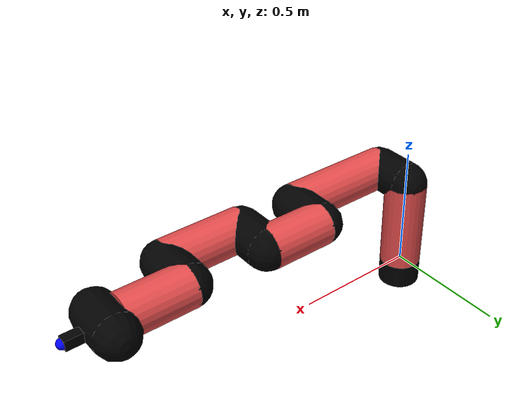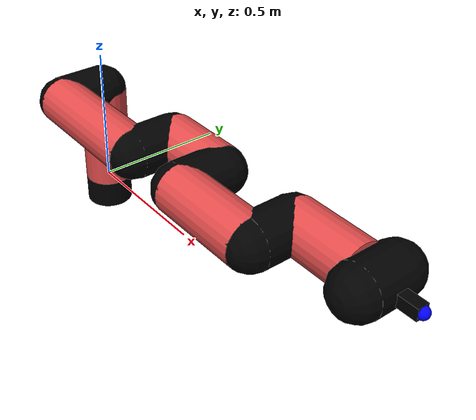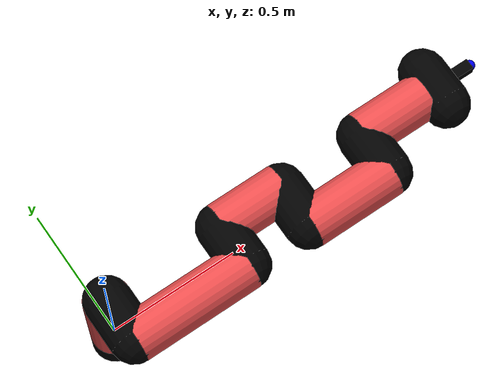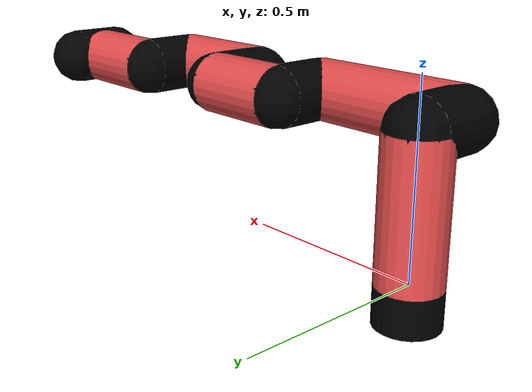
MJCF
<mujoco model="manipulator">
		<compiler angle="degree" coordinate="local" inertiafromgeom="auto" meshdir="meshes/"/>
		<option gravity="0 0 0" integrator="RK4" iterations="30" timestep="0.01"/>

		<default>
		<joint armature="1" limited="true" stiffness="10" damping="15" frictionloss="5.0"/>
		<geom conaffinity="1" condim="3" contype="1" friction=".5 .1 .1" margin="0.002"/>
		<motor ctrllimited="true"/>
		<position ctrllimited="true"/>
		</default>

		<asset>
		<texture builtin="gradient" height="100" rgb1="1.0 1.0 1.0" rgb2="1.0 1.0 1.0" type="skybox" width="100"/>
		<texture builtin="flat" height="32" name="arm_tex" rgb1="0.9 0.3 0.3" type="2d" width="32"/>
		<texture builtin="flat" height="32" name="gripper_tex" rgb1="0.0 0.0 0.0" type="cube" width="32"/>

		<material name="arm_mat" shininess="0.1" specular="0.1" texture="arm_tex"/>
		<material name="gripper_mat" shininess="1" specular="1" texture="gripper_tex"/>
		</asset>

		<worldbody>
		<light cutoff="45" diffuse=".8 .8 .8" dir="0 0.16 -1" directional="false" name="light" pos="0 -2.0 8.0" specular="0.3 0.3 0.3"/>

		<body name="base_link" pos="0 0 -0.1">
		<geom fromto="0 0 0 0 0 0.1" material="arm_mat" name="base_link" rgba="0.0 0.0 0.0 1" size="0.085" type="cylinder"/>
		</body>

		<body name="l1" pos="0 0 0">
<geom fromto="0 0 0 0 0 0.37" material="arm_mat" name="l1" rgba="0.9 0.3 0.3 1" size="0.085" type="cylinder"/>
<geom fromto="0 0 0.37 0 -0.16 0.37" material="arm_mat" name="l1_ex" rgba="0.0 0.0 0.0 1" size="0.085" type="capsule"/>
<joint axis="0 0 1" name="j1" pos="0 0 0" range="-90 90" damping="23.14" frictionloss="7.88"/>

<body name="l2" pos="0 -0.16 0.37">
<geom fromto="0 0 0 0.45 0 0" material="arm_mat" name="l2" rgba="0.9 0.3 0.3 1" size="0.085" type="cylinder"/>
<geom fromto="0.45 0 0 0.45 0.16 0" material="arm_mat" name="l2_ex" rgba="0.0 0.0 0.0 1" size="0.085" type="capsule"/>
<joint axis="0.0 1.0 0.0" name="j2" pos="0 0 0" range="-90 60" damping="26.2" frictionloss="11.85"/>

<body name="l3" pos="0.45 0.16 0">
<geom fromto="0 0 0 0.25 0 0" material="arm_mat" name="l3" rgba="0.9 0.3 0.3 1" size="0.085" type="cylinder"/>
<geom fromto="0.25 0 0 0.25 -0.16 0" material="arm_mat" name="l3_ex" rgba="0.0 0.0 0.0 1" size="0.085" type="capsule"/>
<joint axis="0.0 1.0 0.0" name="j3" pos="0 0 0" range="-30 60" damping="36.09" frictionloss="10.62"/>

<body name="l4" pos="0.25 -0.16 0">
<geom fromto="0 0 0 0.33 0 0" material="arm_mat" name="l4" rgba="0.9 0.3 0.3 1" size="0.085" type="cylinder"/>
<geom fromto="0.33 0 0 0.33 0.16 0" material="arm_mat" name="l4_ex" rgba="0.0 0.0 0.0 1" size="0.085" type="capsule"/>
<joint axis="0.0 1.0 0.0" name="j4" pos="0 0 0" range="-30 60" damping="22.89" frictionloss="12.39"/>

<body name="l5" pos="0.33 0.16 0">
<geom fromto="0 0 0 0.26 0 0" material="arm_mat" name="l5" rgba="0.9 0.3 0.3 1" size="0.085" type="cylinder"/>
<joint axis="0.0 1.0 0.0" name="j5" pos="0 0 0" range="-30 60" damping="29.63" frictionloss="11.69"/>

<body name="gripper" pos="0.26 0 0">
<geom fromto="0.05 -0.07 0 0.05 0.07 0" material="gripper_mat" name="gripper" rgba="0.0 0.0 0.0 1" size="0.085" type="capsule"/><joint axis="1 0 0" name="j6" pos="0 0 0" range="-90 90" damping="15" frictionloss="5.0"/><body name="finger" pos="0.1 0 0">
<geom fromto="0 0.0 0 0.1 0.0 0" material="gripper_mat" name="finger" rgba="0.0 0.0 0.0 1" size="0.020 0.06 0.06" type="box"/>
</body>
<site name="current" pos="0.2 0. 0.0" rgba="0. 0. 1.0 1" size="0.02" type="sphere"/>
</body>
</body>
</body>
</body>
</body>
</body>
</worldbody>
<actuator>
<motor ctrllimited="true" ctrlrange="-1.0 1.0" joint="j1" gear="78.09"/>
<motor ctrllimited="true" ctrlrange="-1.0 1.0" joint="j2" gear="67.72"/>
<motor ctrllimited="true" ctrlrange="-1.0 1.0" joint="j3" gear="87.44"/>
<motor ctrllimited="true" ctrlrange="-1.0 1.0" joint="j4" gear="61.15"/>
<motor ctrllimited="true" ctrlrange="-1.0 1.0" joint="j5" gear="97.98"/>
<motor ctrllimited="true" ctrlrange="-1.0 1.0" joint="j6" gear="80"/>
</actuator>
</mujoco>
